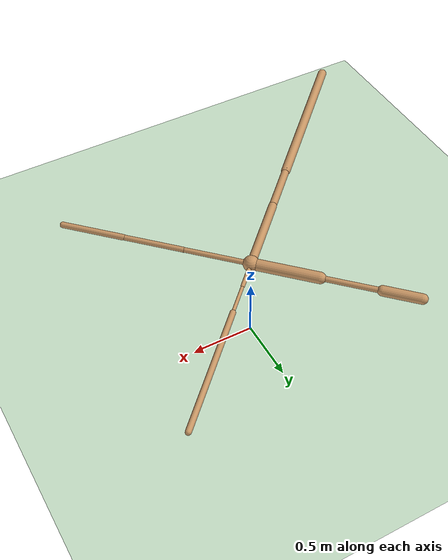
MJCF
<mujoco model="ant">
  <compiler angle="degree" coordinate="local" inertiafromgeom="true" />
  <option integrator="RK4" timestep="0.01" />
  <custom>
    <numeric data="0.0 0.0 0.55 1.0 0.0 0.0 0.0 0.0 1.0 0.0 -1.0 0.0 -1.0 0.0 1.0" name="init_qpos" />
  </custom>
  <default>
    <joint armature="1" damping="1" limited="true" />
    <geom conaffinity="0" condim="3" density="5.0" friction="1 0.5 0.5" margin="0.01" rgba="0.8 0.6 0.4 1" />
  </default>
  <asset>
    <texture builtin="gradient" height="100" rgb1="1 1 1" rgb2="0 0 0" type="skybox" width="100" />
    <texture builtin="flat" height="1278" mark="cross" markrgb="1 1 1" name="texgeom" random="0.01" rgb1="0.8 0.6 0.4" rgb2="0.8 0.6 0.4" type="cube" width="127" />
    <texture builtin="checker" height="100" name="texplane" rgb1="0 0 0" rgb2="0.8 0.8 0.8" type="2d" width="100" />
    <material name="MatPlane" reflectance="0.5" shininess="1" specular="1" texrepeat="60 60" texture="texplane" />
    <material name="geom" texture="texgeom" texuniform="true" />
  </asset>
  <worldbody>
    <light cutoff="100" diffuse="1 1 1" dir="-0 0 -1.3" directional="true" exponent="1" pos="0 0 1.3" specular=".1 .1 .1" />
    <geom conaffinity="1" condim="3" material="MatPlane" name="floor" pos="0 0 0" rgba="0.8 0.9 0.8 1" size="40 40 40" type="plane" />
    <body name="torso" pos="0 0 0.75">
      <camera name="track" mode="trackcom" pos="0 -11 5" xyaxes="1 0 0 0 0.5 1" />
      <geom name="torso_geom" pos="0 0 0" size="0.06266395002603531" type="sphere" />
      <joint armature="0" damping="0" limited="false" margin="0.01" name="root" pos="0 0 0" type="free" />
      <body name="front_left_leg" pos="0 0 0">
        <geom fromto="0 0 0 0.1664094775915146 0.1664094775915146 0" name="aux_1_geom" size="0.015691354870796204" type="capsule" />
        <body name="aux_1" pos="0.1664094775915146 0.1664094775915146 0">
          <joint axis="0 0 1" name="hip_1" pos="0.0 0.0 0.0" range="-30 30" type="hinge" />
          <geom fromto="0 0 0 0.18147453665733337 0.18147453665733337 0" name="left_leg_geom" size="0.012999449856579304" type="capsule" />
          <body name="left_leg_geom_aux" pos="0.18147453665733337 0.18147453665733337 0">
            <joint axis="-1 1 0" name="ankle_1" pos="0.0 0.0 0.0" range="30 70" type="hinge" />
            <geom fromto="0 0 0 0.7283679246902466 0.7283679246902466 0" name="left_ankle_geom" size="0.02248869650065899" type="capsule" />
          </body>
        </body>
      </body>
      <body name="front_right_leg" pos="0 0 0">
        <geom fromto="0 0 0 -0.37073004245758057 0.37073004245758057 0" name="aux_2_geom" size="0.044767171144485474" type="capsule" />
        <body name="aux_2" pos="-0.37073004245758057 0.37073004245758057 0">
          <joint axis="0 0 1" name="hip_2" pos="0.0 0.0 0.0" range="-30 30" type="hinge" />
          <geom fromto="0 0 0 -0.32424497604370117 0.32424497604370117 0" name="right_leg_geom" size="0.021857259795069695" type="capsule" />
          <body name="right_leg_geom_aux" pos="-0.32424497604370117 0.32424497604370117 0">
            <joint axis="1 1 0" name="ankle_2" pos="0.0 0.0 0.0" range="-70 -30" type="hinge" />
            <geom fromto="0 0 0 -0.20569801330566406 0.20569801330566406 0" name="right_ankle_geom" size="0.040145307779312134" type="capsule" />
          </body>
        </body>
      </body>
      <body name="back_leg" pos="0 0 0">
        <geom fromto="0 0 0 -0.4532330632209778 -0.4532330632209778 0" name="aux_3_geom" size="0.033559560775756836" type="capsule" />
        <body name="aux_3" pos="-0.4532330632209778 -0.4532330632209778 0">
          <joint axis="0 0 1" name="hip_3" pos="0.0 0.0 0.0" range="-30 30" type="hinge" />
          <geom fromto="0 0 0 -0.301787793636322 -0.301787793636322 0" name="back_leg_geom" size="0.030501458793878555" type="capsule" />
          <body name="back_leg_geom_aux" pos="-0.301787793636322 -0.301787793636322 0">
            <joint axis="-1 1 0" name="ankle_3" pos="0.0 0.0 0.0" range="-70 -30" type="hinge" />
            <geom fromto="0 0 0 -0.971251368522644 -0.971251368522644 0" name="third_ankle_geom" size="0.03707628324627876" type="capsule" />
          </body>
        </body>
      </body>
      <body name="right_back_leg" pos="0 0 0">
        <geom fromto="0 0 0 0.3721458315849304 -0.3721458315849304 0" name="aux_4_geom" size="0.019615037366747856" type="capsule" />
        <body name="aux_4" pos="0.3721458315849304 -0.3721458315849304 0">
          <joint axis="0 0 1" name="hip_4" pos="0.0 0.0 0.0" range="-30 30" type="hinge" />
          <geom fromto="0 0 0 0.3384704887866974 -0.3384704887866974 0" name="rightback_leg_geom" size="0.020922375842928886" type="capsule" />
          <body name="rightback_leg_geom_aux" pos="0.3384704887866974 -0.3384704887866974 0">
            <joint axis="1 1 0" name="ankle_4" pos="0.0 0.0 0.0" range="30 70" type="hinge" />
            <geom fromto="0 0 0 0.3495556712150574 -0.3495556712150574 0" name="fourth_ankle_geom" size="0.023476868867874146" type="capsule" />
          </body>
        </body>
      </body>
    </body>
  </worldbody>
  <actuator>
    <motor ctrllimited="true" ctrlrange="-1.0 1.0" joint="hip_4" gear="150" />
    <motor ctrllimited="true" ctrlrange="-1.0 1.0" joint="ankle_4" gear="150" />
    <motor ctrllimited="true" ctrlrange="-1.0 1.0" joint="hip_1" gear="150" />
    <motor ctrllimited="true" ctrlrange="-1.0 1.0" joint="ankle_1" gear="150" />
    <motor ctrllimited="true" ctrlrange="-1.0 1.0" joint="hip_2" gear="150" />
    <motor ctrllimited="true" ctrlrange="-1.0 1.0" joint="ankle_2" gear="150" />
    <motor ctrllimited="true" ctrlrange="-1.0 1.0" joint="hip_3" gear="150" />
    <motor ctrllimited="true" ctrlrange="-1.0 1.0" joint="ankle_3" gear="150" />
  </actuator>
</mujoco>
